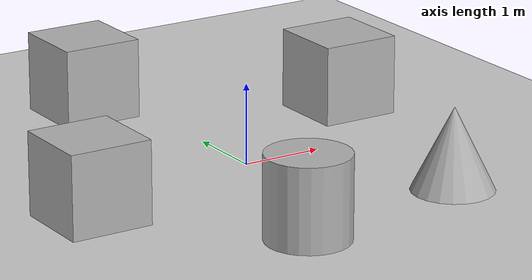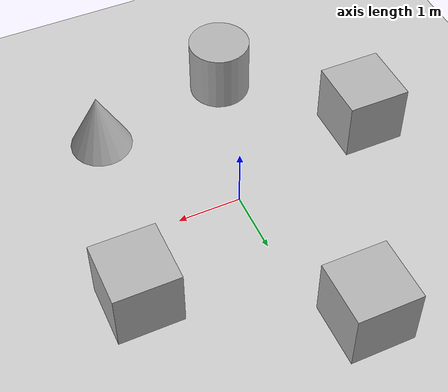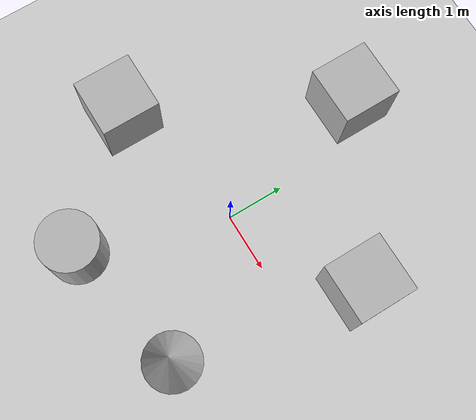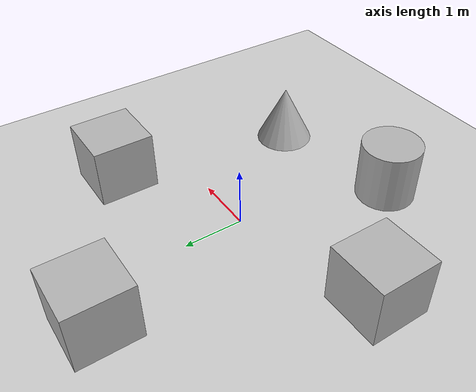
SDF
<sdf version="1.6">
  <world name="empty">
    <physics name="1ms" type="ignored">
      <max_step_size>0.001</max_step_size>
      <real_time_factor>1.0</real_time_factor>
    </physics>
    <plugin
      filename="gz-sim-physics-system"
      name="gz::sim::systems::Physics">
    </plugin>
    <plugin
      filename="gz-sim-user-commands-system"
      name="gz::sim::systems::UserCommands">
    </plugin>
    <plugin
      filename="gz-sim-scene-broadcaster-system"
      name="gz::sim::systems::SceneBroadcaster">
    </plugin>
    <plugin
      filename="gz-sim-sensors-system"
      name="gz::sim::systems::Sensors">
      <render_engine>ogre2</render_engine>
    </plugin>
    <plugin
      filename="gz-sim-contact-system"
      name="gz::sim::systems::Contact">
    </plugin>

    <model name='box'>
      <pose>2.0937396564863158 1.1538498848151579 0.49999999990199806 6.2287739151293738e-22 9.3279666454713669e-22 -3.6315533669320137e-22</pose>
      <link name='box_link'>
        <inertial>
          <inertia>
            <ixx>0.16666</ixx>
            <ixy>0</ixy>
            <ixz>0</ixz>
            <iyy>0.16666</iyy>
            <iyz>0</iyz>
            <izz>0.16666</izz>
          </inertia>
          <mass>1</mass>
          <pose>0 0 0 0 0 0</pose>
        </inertial>
        <collision name='box_collision'>
          <geometry>
            <box>
              <size>1 1 1</size>
            </box>
          </geometry>
          <surface>
            <friction>
              <ode/>
            </friction>
            <bounce/>
            <contact/>
          </surface>
        </collision>
        <visual name='box_visual'>
          <geometry>
            <box>
              <size>1 1 1</size>
            </box>
          </geometry>
          <material>
            <ambient>0.300000012 0.300000012 0.300000012 1</ambient>
            <diffuse>0.699999988 0.699999988 0.699999988 1</diffuse>
            <specular>1 1 1 1</specular>
          </material>
        </visual>
        <pose>0 0 0 0 0 0</pose>
        <enable_wind>false</enable_wind>
      </link>
      <static>false</static>
      <self_collide>false</self_collide>
    </model>
    <model name='box_0'>
      <pose>-0.65432027281921923 2.7454989484706958 0.49999999990199806 6.2287739151293738e-22 9.3279666454713669e-22 -3.6315533669320137e-22</pose>
      <link name='box_link'>
        <inertial>
          <inertia>
            <ixx>0.16666</ixx>
            <ixy>0</ixy>
            <ixz>0</ixz>
            <iyy>0.16666</iyy>
            <iyz>0</iyz>
            <izz>0.16666</izz>
          </inertia>
          <mass>1</mass>
          <pose>0 0 0 0 0 0</pose>
        </inertial>
        <collision name='box_collision'>
          <geometry>
            <box>
              <size>1 1 1</size>
            </box>
          </geometry>
          <surface>
            <friction>
              <ode/>
            </friction>
            <bounce/>
            <contact/>
          </surface>
        </collision>
        <visual name='box_visual'>
          <geometry>
            <box>
              <size>1 1 1</size>
            </box>
          </geometry>
          <material>
            <ambient>0.300000012 0.300000012 0.300000012 1</ambient>
            <diffuse>0.699999988 0.699999988 0.699999988 1</diffuse>
            <specular>1 1 1 1</specular>
          </material>
        </visual>
        <pose>0 0 0 0 0 0</pose>
        <enable_wind>false</enable_wind>
      </link>
      <static>false</static>
      <self_collide>false</self_collide>
    </model>
    <model name='box_1'>
      <pose>-2.4566540054196362 -0.62980686550494969 0.49999999990199806 1.7084716647436826e-21 1.7859135562978205e-21 -2.019312431235984e-22</pose>
      <link name='box_link'>
        <inertial>
          <inertia>
            <ixx>0.16666</ixx>
            <ixy>0</ixy>
            <ixz>0</ixz>
            <iyy>0.16666</iyy>
            <iyz>0</iyz>
            <izz>0.16666</izz>
          </inertia>
          <mass>1</mass>
          <pose>0 0 0 0 0 0</pose>
        </inertial>
        <collision name='box_collision'>
          <geometry>
            <box>
              <size>1 1 1</size>
            </box>
          </geometry>
          <surface>
            <friction>
              <ode/>
            </friction>
            <bounce/>
            <contact/>
          </surface>
        </collision>
        <visual name='box_visual'>
          <geometry>
            <box>
              <size>1 1 1</size>
            </box>
          </geometry>
          <material>
            <ambient>0.300000012 0.300000012 0.300000012 1</ambient>
            <diffuse>0.699999988 0.699999988 0.699999988 1</diffuse>
            <specular>1 1 1 1</specular>
          </material>
        </visual>
        <pose>0 0 0 0 0 0</pose>
        <enable_wind>false</enable_wind>
      </link>
      <static>false</static>
      <self_collide>false</self_collide>
    </model>
    <model name='cone'>
      <pose>1.5328563295918791 -2.005341985096341 0.49999999993296756 5.2548544155140844e-17 -7.7132841038066057e-10 -1.848369177196814e-23</pose>
      <link name='cone_link'>
        <inertial>
          <inertia>
            <ixx>0.074999999999999997</ixx>
            <ixy>0</ixy>
            <ixz>0</ixz>
            <iyy>0.074999999999999997</iyy>
            <iyz>0</iyz>
            <izz>0.074999999999999997</izz>
          </inertia>
          <mass>1</mass>
          <pose>0 0 0 0 0 0</pose>
        </inertial>
        <collision name='cone_collision'>
          <geometry>
            <cone>
              <radius>0.5</radius>
              <length>1</length>
            </cone>
          </geometry>
          <surface>
            <friction>
              <ode/>
            </friction>
            <bounce/>
            <contact/>
          </surface>
        </collision>
        <visual name='cone_visual'>
          <geometry>
            <cone>
              <radius>0.5</radius>
              <length>1</length>
            </cone>
          </geometry>
          <material>
            <ambient>0.300000012 0.300000012 0.300000012 1</ambient>
            <diffuse>0.699999988 0.699999988 0.699999988 1</diffuse>
            <specular>1 1 1 1</specular>
          </material>
        </visual>
        <pose>0 0 0 0 0 0</pose>
        <enable_wind>false</enable_wind>
      </link>
      <static>false</static>
      <self_collide>false</self_collide>
    </model>
    <model name='cylinder'>
      <pose>-0.75174975779766506 -2.4301941340317654 0.49999942638036005 5.3149378424141385e-20 2.026990519308157e-19 -3.7010235525786995e-21</pose>
      <link name='cylinder_link'>
        <inertial>
          <inertia>
            <ixx>0.14580000000000001</ixx>
            <ixy>0</ixy>
            <ixz>0</ixz>
            <iyy>0.14580000000000001</iyy>
            <iyz>0</iyz>
            <izz>0.125</izz>
          </inertia>
          <mass>1</mass>
          <pose>0 0 0 0 0 0</pose>
        </inertial>
        <collision name='cylinder_collision'>
          <geometry>
            <cylinder>
              <radius>0.5</radius>
              <length>1</length>
            </cylinder>
          </geometry>
          <surface>
            <friction>
              <ode/>
            </friction>
            <bounce/>
            <contact/>
          </surface>
        </collision>
        <visual name='cylinder_visual'>
          <geometry>
            <cylinder>
              <radius>0.5</radius>
              <length>1</length>
            </cylinder>
          </geometry>
          <material>
            <ambient>0.300000012 0.300000012 0.300000012 1</ambient>
            <diffuse>0.699999988 0.699999988 0.699999988 1</diffuse>
            <specular>1 1 1 1</specular>
          </material>
        </visual>
        <pose>0 0 0 0 0 0</pose>
        <enable_wind>false</enable_wind>
      </link>
      <static>false</static>
      <self_collide>false</self_collide>
    </model>

    <light type="directional" name="sun">
      <cast_shadows>true</cast_shadows>
      <pose>0 0 10 0 0 0</pose>
      <diffuse>0.8 0.8 0.8 1</diffuse>
      <specular>0.2 0.2 0.2 1</specular>
      <attenuation>
        <range>1000</range>
        <constant>0.9</constant>
        <linear>0.01</linear>
        <quadratic>0.001</quadratic>
      </attenuation>
      <direction>-0.5 0.1 -0.9</direction>
    </light>

    <model name="ground_plane">
      <static>true</static>
      <link name="link">
        <collision name="collision">
          <geometry>
            <plane>
              <normal>0 0 1</normal>
              <size>100 100</size>
            </plane>
          </geometry>
        </collision>
        <visual name="visual">
          <geometry>
            <plane>
              <normal>0 0 1</normal>
              <size>100 100</size>
            </plane>
          </geometry>
          <material>
            <ambient>0.8 0.8 0.8 1</ambient>
            <diffuse>0.8 0.8 0.8 1</diffuse>
            <specular>0.8 0.8 0.8 1</specular>
          </material>
        </visual>
      </link>
    </model>
  </world>
</sdf>
